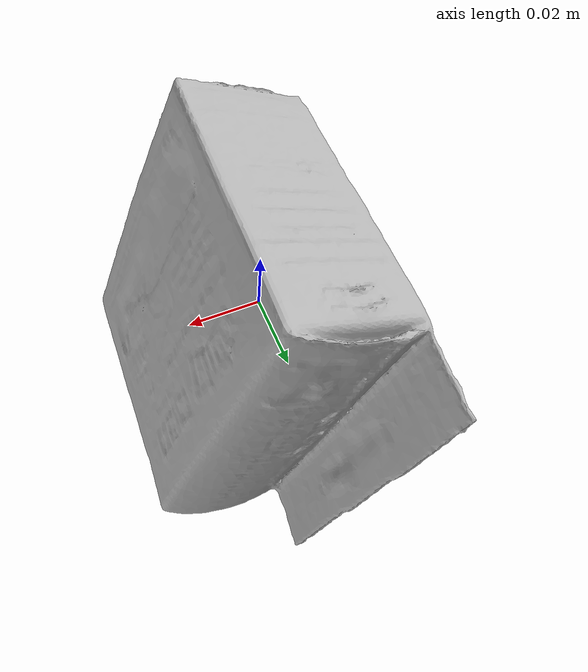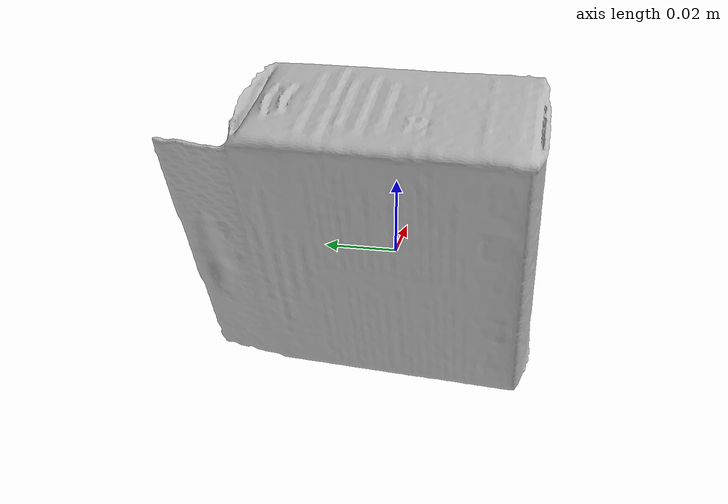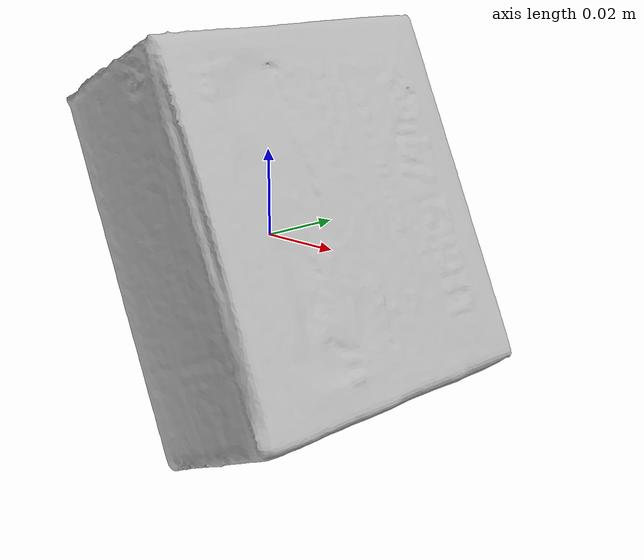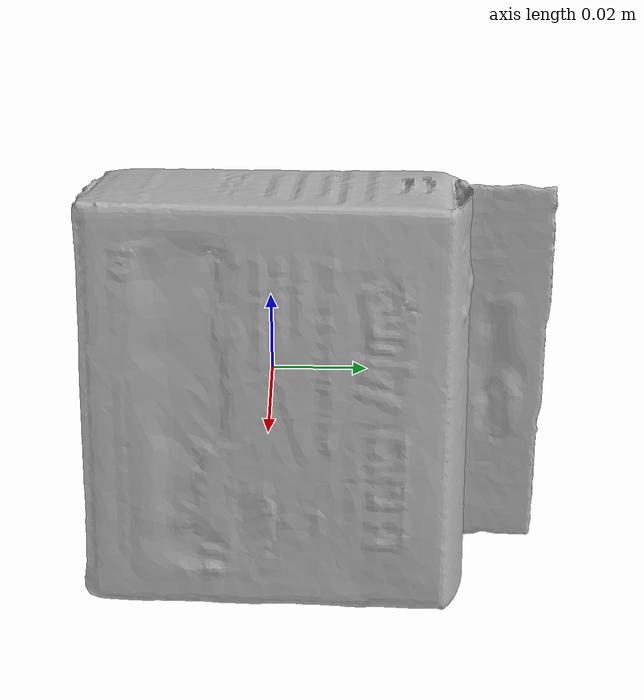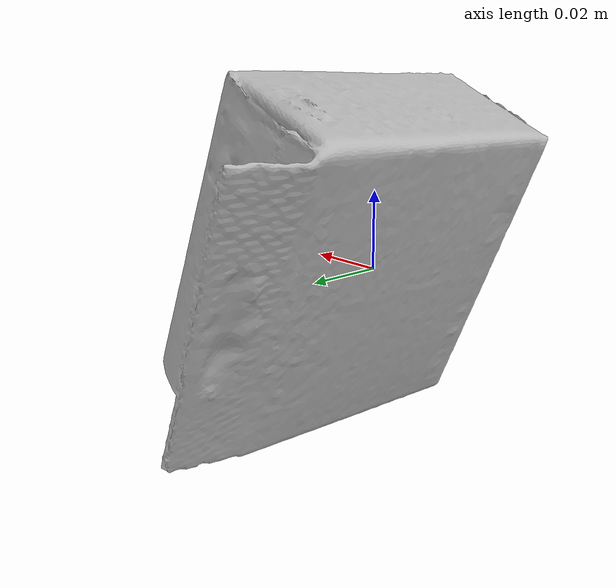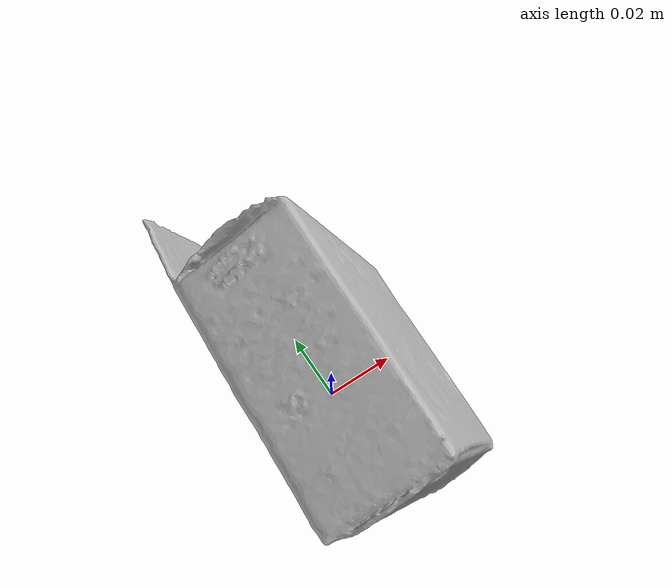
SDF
<?xml version='1.0'?>
<sdf version="1.4">
  <model name="CleaningCloths">
    <static>false</static>
    <link name="link">
      <inertial>
        <pose>0.00794573491340666 0.005154156752002144 0.0020392878430297323 1.288431164688476 0.3942211861066699 -3.1251103964773286</pose>
        <mass>0.028727478331802683</mass>
        <inertia>
          <ixx>3.5487942679587684e-05</ixx>
          <ixy>8.003961289516817e-22</ixy>
          <ixz>-1.1425442896289984e-20</ixz>
          <iyy>2.165305974378338e-05</iyy>
          <iyz>1.2420939774591029e-20</iyz>
          <izz>2.0767096490152212e-05</izz>
        </inertia>
      </inertial>
      <collision name="collision">
        <geometry>
          <mesh>
            <!-- Use a downsampled mesh for collisions -->
            <uri>model:///CleaningCloths/CleaningCloths_250_collision.obj</uri>
	        </mesh>
        </geometry>
        <surface>
      </surface>
      </collision>
      <visual name="visual">
        <geometry>
          <mesh>
            <uri>model:///CleaningCloths/CleaningCloths_25k_tex.obj</uri>
	        </mesh>
        </geometry>
        <material>
          <script>
            <uri>model:///CleaningCloths/CleaningCloths.material</uri>
            <name>CleaningCloths</name>
          </script>
        </material>
      </visual>
    </link>
  </model>
</sdf>
